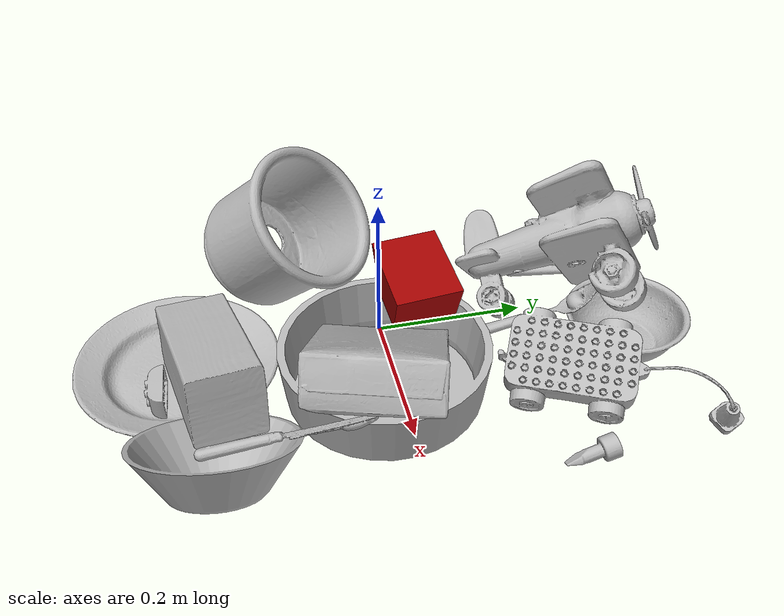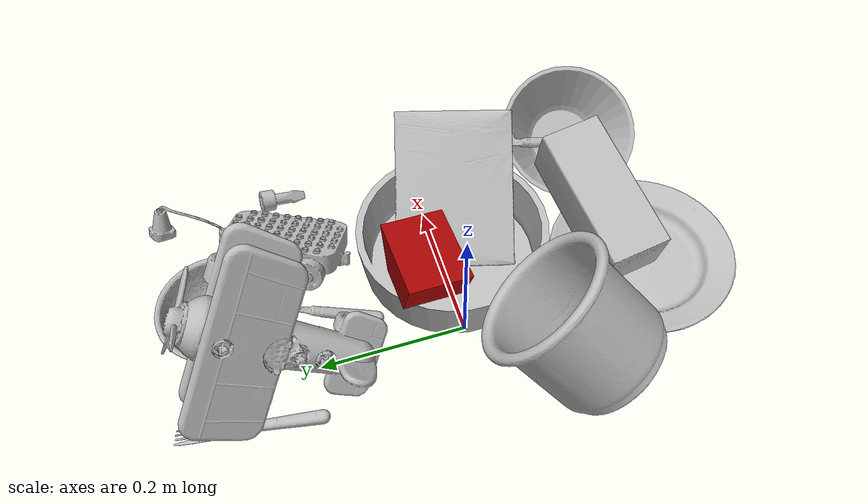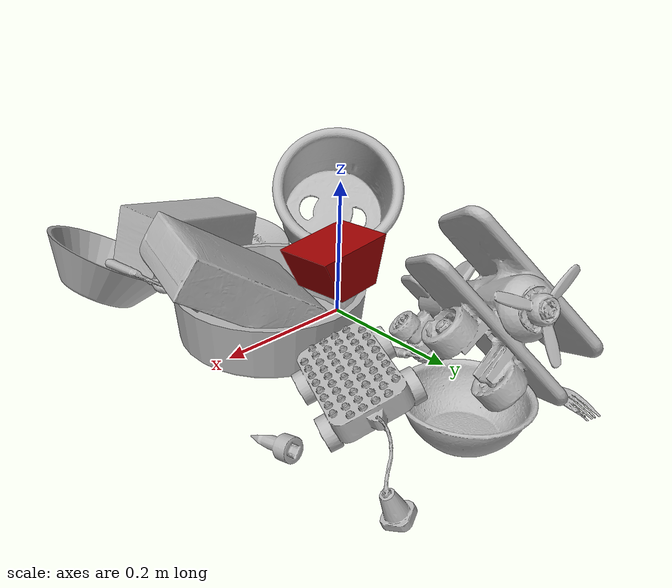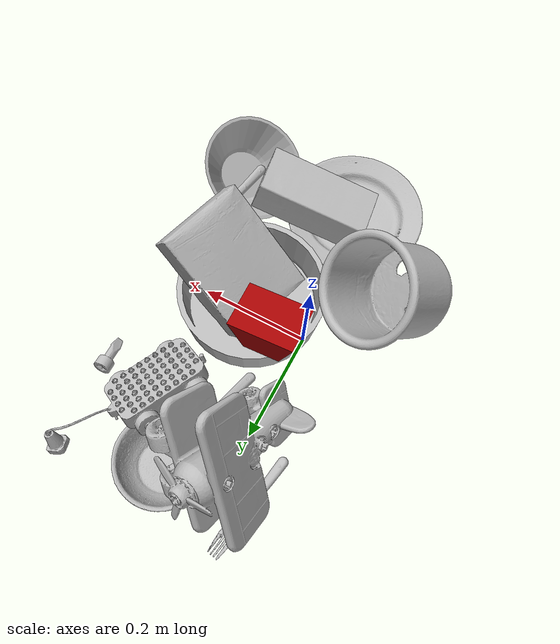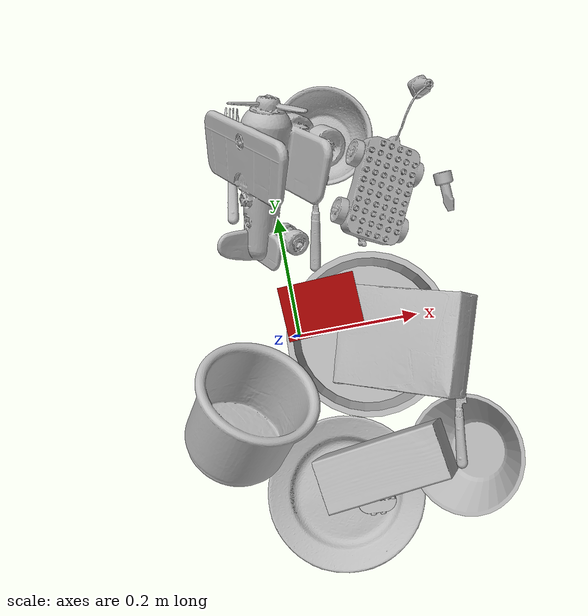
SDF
<sdf version="1.4">
  <world name="default">
    <light name="light1" type="point">
      <pose>0 0 1 0 0 0</pose>
      <diffuse>3 3 3 1</diffuse>
      <specular>3 3 3 1</specular>
    </light>
    <light name="light2" type="point">
      <pose>0 0.5 2 0 0 0</pose>
      <diffuse>1 1 1 1</diffuse>
      <specular>1 1 1 1</specular>
    </light>
    <light name="light3" type="point">
      <pose>0 0.5 2 0 0 0</pose>
      <diffuse>3 3 3 1</diffuse>
      <specular>3 3 3 1</specular>
    </light>
    <scene>
      <ambient>0.7 0.7 0.7</ambient>
    </scene>
    <model name="plate1">
      <link name="link_plate1">
        <collision name="default">
          <geometry>
            <mesh>
              <uri>model://plate/collision_meshes/collision.obj</uri>
              <scale>1.0 1.0 1.0</scale>
            </mesh>
          </geometry>
          <surface>
            <friction>
              <ode>
                <mu>0.5</mu>
                <mu2>0.5</mu2>
              </ode>
            </friction>
          <contact>
        <ode>
            <max_vel>0</max_vel>
            <min_depth>0.0001</min_depth>
            <kp>1e8</kp>
        </ode>
    </contact></surface>
        </collision>
        <visual name="default">
          <geometry>
            <mesh>
              <uri>model://plate/visual_meshes/visual.dae</uri>
              <scale>1.0 1.0 1.0</scale>
            </mesh>
          </geometry>
        </visual>
        <inertial>
          <mass>0.18013060092926025</mass>
          <pose>-0.0006044624606147408 0.0002782579977065325 -0.0010561981471255422 0.0022187543261248163 -0.003225499970721242 0.452618951787785</pose>
          <inertia>
            <ixx>0.00084265455</ixx>
            <iyy>0.000834595</iyy>
            <izz>0.0016481068</izz>
            <ixy>0</ixy>
            <ixz>0</ixz>
            <iyz>0</iyz>
          </inertia>
        </inertial>
      </link>
      <pose>0.02859419398009777 -0.27191463112831116 0.013734474778175354 -2.443052908097033e-05 2.57941634935237e-05 1.0036559654600878</pose>
    </model>
    <model name="plate2">
      <link name="link_plate2">
        <collision name="default">
          <geometry>
            <mesh>
              <uri>model://pan_tefal/collision_meshes/collision.obj</uri>
              <scale>1.0 1.0 1.0</scale>
            </mesh>
          </geometry>
          <surface>
            <friction>
              <ode>
                <mu>0.5</mu>
                <mu2>0.5</mu2>
              </ode>
            </friction>
          <contact>
        <ode>
            <max_vel>0</max_vel>
            <min_depth>0.0001</min_depth>
            <kp>1e8</kp>
        </ode>
    </contact></surface>
        </collision>
        <visual name="default">
          <geometry>
            <mesh>
              <uri>model://pan_tefal/visual_meshes/visual.dae</uri>
              <scale>1.0 1.0 1.0</scale>
            </mesh>
          </geometry>
        </visual>
        <inertial>
          <mass>1.1554980278015137</mass>
          <pose>-0.00018001958960667253 3.279018710600212e-05 -0.008514934219419956 0.0008190268412404128 -0.0003301434555644904 -0.33185316474518306</pose>
          <inertia>
            <ixx>0.007976347</ixx>
            <iyy>0.008027771</iyy>
            <izz>0.014682918</izz>
            <ixy>0</ixy>
            <ixz>0</ixz>
            <iyz>0</iyz>
          </inertia>
        </inertial>
      </link>
      <pose>0.11383827030658722 -0.018209457397460938 0.03805012255907059 -3.912507412050568e-06 -3.865381827991793e-06 2.380841918587004</pose>
    </model>
    <model name="bowl1">
      <link name="link_bowl1">
        <collision name="default">
          <geometry>
            <mesh>
              <uri>model://bowl/collision_meshes/collision.obj</uri>
              <scale>1.0 1.0 1.0</scale>
            </mesh>
          </geometry>
          <surface>
            <friction>
              <ode>
                <mu>0.5</mu>
                <mu2>0.5</mu2>
              </ode>
            </friction>
          <contact>
        <ode>
            <max_vel>0</max_vel>
            <min_depth>0.0001</min_depth>
            <kp>1e8</kp>
        </ode>
    </contact></surface>
        </collision>
        <visual name="default">
          <geometry>
            <mesh>
              <uri>model://bowl/visual_meshes/visual.dae</uri>
              <scale>1.0 1.0 1.0</scale>
            </mesh>
          </geometry>
        </visual>
        <inertial>
          <mass>0.08154366910457611</mass>
          <pose>0.0002044497523456812 -0.0010302083101123571 -0.0008042664267122746 -0.01576409235239578 0.014546819263349199 0.7140418673414882</pose>
          <inertia>
            <ixx>0.00018731231</ixx>
            <iyy>0.000183127</iyy>
            <izz>0.00031512365</izz>
            <ixy>0</ixy>
            <ixz>0</ixz>
            <iyz>0</iyz>
          </inertia>
        </inertial>
      </link>
      <pose>0.09965503960847855 0.31168150901794434 0.027931416407227516 -0.003452016368564988 -7.808494231601315e-05 1.8194474815677222</pose>
    </model>
    <model name="bowl2">
      <link name="link_bowl2">
        <collision name="default">
          <geometry>
            <mesh>
              <uri>model://bowl_a/collision_meshes/collision.obj</uri>
              <scale>1.0 1.0 1.0</scale>
            </mesh>
          </geometry>
          <surface>
            <friction>
              <ode>
                <mu>0.5</mu>
                <mu2>0.5</mu2>
              </ode>
            </friction>
          <contact>
        <ode>
            <max_vel>0</max_vel>
            <min_depth>0.0001</min_depth>
            <kp>1e8</kp>
        </ode>
    </contact></surface>
        </collision>
        <visual name="default">
          <geometry>
            <mesh>
              <uri>model://bowl_a/visual_meshes/visual.dae</uri>
              <scale>1.0 1.0 1.0</scale>
            </mesh>
          </geometry>
        </visual>
        <inertial>
          <mass>0.4363987147808075</mass>
          <pose>0.0002786752884276211 4.73113359475974e-05 -0.0013765294570475817 -0.0009805318297205425 -0.0010938254473046036 -0.19123908587825994</pose>
          <inertia>
            <ixx>0.0012424473</ixx>
            <iyy>0.001250075</iyy>
            <izz>0.0022097398</izz>
            <ixy>0</ixy>
            <ixz>0</ixz>
            <iyz>0</iyz>
          </inertia>
        </inertial>
      </link>
      <pose>0.2423471063375473 -0.23725606501102448 0.05313802883028984 -0.496629321622961 -0.010535828611073765 1.3948062425188026</pose>
    </model>
    <model name="silverware1">
      <link name="link_silverware1">
        <collision name="default">
          <geometry>
            <mesh>
              <uri>model://spoon/collision_meshes/collision.obj</uri>
              <scale>1.0 1.0 1.0</scale>
            </mesh>
          </geometry>
          <surface>
            <friction>
              <ode>
                <mu>0.5</mu>
                <mu2>0.5</mu2>
              </ode>
            </friction>
          <contact>
        <ode>
            <max_vel>0</max_vel>
            <min_depth>0.0001</min_depth>
            <kp>1e8</kp>
        </ode>
    </contact></surface>
        </collision>
        <visual name="default">
          <geometry>
            <mesh>
              <uri>model://spoon/visual_meshes/visual.dae</uri>
              <scale>1.0 1.0 1.0</scale>
            </mesh>
          </geometry>
        </visual>
        <inertial>
          <mass>0.034700214862823486</mass>
          <pose>-0.00552632100880146 -0.0016034168656915426 -0.0007271654903888702 0.03521477925438783 -0.03906582568380071 0.006150611591128785</pose>
          <inertia>
            <ixx>1.9300821e-06</ixx>
            <iyy>0.00013203312</iyy>
            <izz>0.00013298499</izz>
            <ixy>0</ixy>
            <ixz>0</ixz>
            <iyz>0</iyz>
          </inertia>
        </inertial>
      </link>
      <pose>0.06266885250806808 0.191358283162117 0.04208885133266449 -0.12843233833199744 -0.37278977081459674 1.3589091887493796</pose>
    </model>
    <model name="box1">
      <link name="link_box1">
        <collision name="default">
          <geometry>
            <mesh>
              <uri>model://cracker_box/collision_meshes/collision.obj</uri>
              <scale>1.0 1.0 1.0</scale>
            </mesh>
          </geometry>
          <surface>
            <friction>
              <ode>
                <mu>0.5</mu>
                <mu2>0.5</mu2>
              </ode>
            </friction>
          <contact>
        <ode>
            <max_vel>0</max_vel>
            <min_depth>0.0001</min_depth>
            <kp>1e8</kp>
        </ode>
    </contact></surface>
        </collision>
        <visual name="default">
          <geometry>
            <mesh>
              <uri>model://cracker_box/visual_meshes/visual.dae</uri>
              <scale>1.0 1.0 1.0</scale>
            </mesh>
          </geometry>
        </visual>
        <inertial>
          <mass>1.831273078918457</mass>
          <pose>0.000946414191275835 0.00025434247800149024 -0.0017029533628374338 -0.0003162074786093215 -0.01110648680647863 0.0025467950006863548</pose>
          <inertia>
            <ixx>0.0046579414</ixx>
            <iyy>0.0076911766</iyy>
            <izz>0.010976015</izz>
            <ixy>0</ixy>
            <ixz>0</ixz>
            <iyz>0</iyz>
          </inertia>
        </inertial>
      </link>
      <pose>0.16619598865509033 -0.036608871072530746 0.08944997936487198 3.126851835162973 -0.5758576946898694 -0.2841211109167067</pose>
    </model>
    <model name="box2">
      <link name="link_box2">
        <collision name="default">
          <geometry>
            <mesh>
              <uri>model://wood_block/collision_meshes/collision.obj</uri>
              <scale>1.0 1.0 1.0</scale>
            </mesh>
          </geometry>
          <surface>
            <friction>
              <ode>
                <mu>0.5</mu>
                <mu2>0.5</mu2>
              </ode>
            </friction>
          <contact>
        <ode>
            <max_vel>0</max_vel>
            <min_depth>0.0001</min_depth>
            <kp>1e8</kp>
        </ode>
    </contact></surface>
        </collision>
        <visual name="default">
          <geometry>
            <mesh>
              <uri>model://wood_block/visual_meshes/visual.dae</uri>
              <scale>1.0 1.0 1.0</scale>
            </mesh>
          </geometry>
        </visual>
        <inertial>
          <mass>1.0038666725158691</mass>
          <pose>-5.813315510749817e-06 -0.000570809468626976 0.0002640858292579651 -0.05221020962952386 -0.005192696059900718 -0.006861377701075274</pose>
          <inertia>
            <ixx>0.0013433257</ixx>
            <iyy>0.0042435657</iyy>
            <izz>0.0042276927</izz>
            <ixy>0</ixy>
            <ixz>0</ixz>
            <iyz>0</iyz>
          </inertia>
        </inertial>
      </link>
      <pose>0.09952639043331146 -0.2297850400209427 0.07270646095275879 1.6232699316387897 0.23451462893707065 -2.983848299619412</pose>
    </model>
    <model name="cup1">
      <link name="link_cup1">
        <collision name="default">
          <geometry>
            <mesh>
              <uri>model://i_cups/collision_meshes/collision.obj</uri>
              <scale>2.0 2.0 2.0</scale>
            </mesh>
          </geometry>
          <surface>
            <friction>
              <ode>
                <mu>0.5</mu>
                <mu2>0.5</mu2>
              </ode>
            </friction>
          <contact>
        <ode>
            <max_vel>0</max_vel>
            <min_depth>0.0001</min_depth>
            <kp>1e8</kp>
        </ode>
    </contact></surface>
        </collision>
        <visual name="default">
          <geometry>
            <mesh>
              <uri>model://i_cups/visual_meshes/visual.dae</uri>
              <scale>2.0 2.0 2.0</scale>
            </mesh>
          </geometry>
        </visual>
        <inertial>
          <mass>0.6038269996643066</mass>
          <pose>0.00022479970357380807 0.0003359453985467553 -0.001715799910016358 -0.02898255198870416 -0.03987340808103542 -0.3459203892901821</pose>
          <inertia>
            <ixx>0.0033440301</ixx>
            <iyy>0.003373493</iyy>
            <izz>0.0037374943</izz>
            <ixy>0</ixy>
            <ixz>0</ixz>
            <iyz>0</iyz>
          </inertia>
        </inertial>
      </link>
      <pose>-0.1010642871260643 -0.11311289668083191 0.1057877391576767 0.7552990772785775 0.4378148362456957 2.0241141118840122</pose>
    </model>
    <model name="silverware2">
      <link name="link_silverware2">
        <collision name="default">
          <geometry>
            <mesh>
              <uri>model://knife/collision_meshes/collision.obj</uri>
              <scale>1.0 1.0 1.0</scale>
            </mesh>
          </geometry>
          <surface>
            <friction>
              <ode>
                <mu>0.5</mu>
                <mu2>0.5</mu2>
              </ode>
            </friction>
          <contact>
        <ode>
            <max_vel>0</max_vel>
            <min_depth>0.0001</min_depth>
            <kp>1e8</kp>
        </ode>
    </contact></surface>
        </collision>
        <visual name="default">
          <geometry>
            <mesh>
              <uri>model://knife/visual_meshes/visual.dae</uri>
              <scale>1.0 1.0 1.0</scale>
            </mesh>
          </geometry>
        </visual>
        <inertial>
          <mass>0.01351180113852024</mass>
          <pose>-0.023785246536135674 0.0015275131445378065 5.062015407020226e-05 0.073058244240525 0.017248418380522417 -0.007409818685807072</pose>
          <inertia>
            <ixx>3.8351965e-07</ixx>
            <iyy>5.1910156e-05</iyy>
            <izz>5.2033673e-05</izz>
            <ixy>0</ixy>
            <ixz>0</ixz>
            <iyz>0</iyz>
          </inertia>
        </inertial>
      </link>
      <pose>0.23578281700611115 -0.15523532032966614 0.07607348263263702 -0.47179218436174253 -0.20562795414305726 1.4472826742636469</pose>
    </model>
    <model name="silverware3">
      <link name="link_silverware3">
        <collision name="default">
          <geometry>
            <mesh>
              <uri>model://fork/collision_meshes/collision.obj</uri>
              <scale>1.0 1.0 1.0</scale>
            </mesh>
          </geometry>
          <surface>
            <friction>
              <ode>
                <mu>0.5</mu>
                <mu2>0.5</mu2>
              </ode>
            </friction>
          <contact>
        <ode>
            <max_vel>0</max_vel>
            <min_depth>0.0001</min_depth>
            <kp>1e8</kp>
        </ode>
    </contact></surface>
        </collision>
        <visual name="default">
          <geometry>
            <mesh>
              <uri>model://fork/visual_meshes/visual.dae</uri>
              <scale>1.0 1.0 1.0</scale>
            </mesh>
          </geometry>
        </visual>
        <inertial>
          <mass>0.030749449506402016</mass>
          <pose>-0.029570044949650764 0.0004658822435885668 0.00032188615296036005 -0.013551266353778695 -0.010977839115777554 0.014453902178384312</pose>
          <inertia>
            <ixx>1.0779423e-06</ixx>
            <iyy>8.0277954e-05</iyy>
            <izz>8.076011e-05</izz>
            <ixy>0</ixy>
            <ixz>0</ixz>
            <iyz>0</iyz>
          </inertia>
        </inertial>
      </link>
      <pose>-0.058126576244831085 0.3010595440864563 0.007446600589901209 -3.063499621040885 0.002835967102094438 1.4081917203061418</pose>
    </model>
    <model name="toy1">
      <link name="link_toy1">
        <collision name="default">
          <geometry>
            <mesh>
              <uri>model://e_toy_airplane/collision_meshes/collision.obj</uri>
              <scale>1.0 1.0 1.0</scale>
            </mesh>
          </geometry>
          <surface>
            <friction>
              <ode>
                <mu>0.5</mu>
                <mu2>0.5</mu2>
              </ode>
            </friction>
          <contact>
        <ode>
            <max_vel>0</max_vel>
            <min_depth>0.0001</min_depth>
            <kp>1e8</kp>
        </ode>
    </contact></surface>
        </collision>
        <visual name="default">
          <geometry>
            <mesh>
              <uri>model://e_toy_airplane/visual_meshes/visual.dae</uri>
              <scale>1.0 1.0 1.0</scale>
            </mesh>
          </geometry>
        </visual>
        <inertial>
          <mass>0.01770107075572014</mass>
          <pose>0.00011740486661437899 -2.248296732432209e-05 -0.011187206022441387 0.005518513464699853 0.009228302242376646 0.15041570361631973</pose>
          <inertia>
            <ixx>5.4025695e-06</ixx>
            <iyy>5.3473045e-06</iyy>
            <izz>1.6236847e-06</izz>
            <ixy>0</ixy>
            <ixz>0</ixz>
            <iyz>0</iyz>
          </inertia>
        </inertial>
      </link>
      <pose>0.2854205071926117 0.19091033935546875 0.011941591277718544 2.0453184908131523 1.1309611605469951 0.5096492492138528</pose>
    </model>
    <model name="toy2">
      <link name="link_toy2">
        <collision name="default">
          <geometry>
            <mesh>
              <uri>model://a_toy_airplane/collision_meshes/collision.obj</uri>
              <scale>1.0 1.0 1.0</scale>
            </mesh>
          </geometry>
          <surface>
            <friction>
              <ode>
                <mu>0.5</mu>
                <mu2>0.5</mu2>
              </ode>
            </friction>
          <contact>
        <ode>
            <max_vel>0</max_vel>
            <min_depth>0.0001</min_depth>
            <kp>1e8</kp>
        </ode>
    </contact></surface>
        </collision>
        <visual name="default">
          <geometry>
            <mesh>
              <uri>model://a_toy_airplane/visual_meshes/visual.dae</uri>
              <scale>1.0 1.0 1.0</scale>
            </mesh>
          </geometry>
        </visual>
        <inertial>
          <mass>1.6391528844833374</mass>
          <pose>0.02516508661210537 -0.003707319963723421 -0.0011962438002228737 -0.012016999892079352 -0.14663507149587088 0.004149061575203148</pose>
          <inertia>
            <ixx>0.0059525487</ixx>
            <iyy>0.008674072</iyy>
            <izz>0.01015627</izz>
            <ixy>0</ixy>
            <ixz>0</ixz>
            <iyz>0</iyz>
          </inertia>
        </inertial>
      </link>
      <pose>-0.004818614572286606 0.24680009484291077 0.10106070339679718 -0.8873682696913556 -0.3054783898356236 1.1210177353802688</pose>
    </model>
    <model name="toy3">
      <link name="link_toy3">
        <collision name="default">
          <geometry>
            <mesh>
              <uri>model://g_lego_duplo/collision_meshes/collision.obj</uri>
              <scale>1.0 1.0 1.0</scale>
            </mesh>
          </geometry>
          <surface>
            <friction>
              <ode>
                <mu>0.5</mu>
                <mu2>0.5</mu2>
              </ode>
            </friction>
          <contact>
        <ode>
            <max_vel>0</max_vel>
            <min_depth>0.0001</min_depth>
            <kp>1e8</kp>
        </ode>
    </contact></surface>
        </collision>
        <visual name="default">
          <geometry>
            <mesh>
              <uri>model://g_lego_duplo/visual_meshes/visual.dae</uri>
              <scale>1.0 1.0 1.0</scale>
            </mesh>
          </geometry>
        </visual>
        <inertial>
          <mass>0.5092288255691528</mass>
          <pose>-0.05004768446087837 0.0017554641235619783 0.0038806775119155645 0.010963010010498962 0.03810823590924119 -0.09653024292159736</pose>
          <inertia>
            <ixx>0.00073787844</ixx>
            <iyy>0.002230844</iyy>
            <izz>0.002790868</izz>
            <ixy>0</ixy>
            <ixz>0</ixz>
            <iyz>0</iyz>
          </inertia>
        </inertial>
      </link>
      <pose>0.2024364471435547 0.25805726647377014 0.050417523831129074 0.4273037943350299 -2.9044708446998292e-05 1.1160834617794866</pose>
    </model>
    <model name="toy4">
      <link name="link_toy4">
        <collision name="default">
          <geometry>
            <mesh>
              <uri>model://a_lego_duplo/collision_meshes/collision.obj</uri>
              <scale>1.0 1.0 1.0</scale>
            </mesh>
          </geometry>
          <surface>
            <friction>
              <ode>
                <mu>0.5</mu>
                <mu2>0.5</mu2>
              </ode>
            </friction>
          <contact>
        <ode>
            <max_vel>0</max_vel>
            <min_depth>0.0001</min_depth>
            <kp>1e8</kp>
        </ode>
    </contact></surface>
        </collision>
        <visual name="default">
          <geometry>
            <mesh>
              <uri>model://a_lego_duplo/visual_meshes/visual.dae</uri>
              <scale>1.0 1.0 1.0</scale>
            </mesh>
          </geometry>
        </visual>
        <inertial>
          <mass>0.03161923587322235</mass>
          <pose>-0.00011337598698446527 0.00018517524586059153 0.00036926084430888295 -0.014116977368405541 -0.00012565500284871778 6.143069663272407e-05</pose>
          <inertia>
            <ixx>4.0538393e-06</ixx>
            <iyy>9.081488e-06</iyy>
            <izz>1.1249442e-05</izz>
            <ixy>0</ixy>
            <ixz>0</ixz>
            <iyz>0</iyz>
          </inertia>
        </inertial>
      </link>
      <pose>0.0752539336681366 -0.3010958135128021 0.019793406128883362 -1.5870189071375276 -0.018189703431268 3.079194534022444</pose>
    </model>
    <model name="toy5">
      <link name="link_toy5">
        <collision name="default">
          <geometry>
            <mesh>
              <uri>model://prism/collision_meshes/collision.obj</uri>
              <scale>1.0 1.0 1.0</scale>
            </mesh>
          </geometry>
          <surface>
            <friction>
              <ode>
                <mu>0.5</mu>
                <mu2>0.5</mu2>
              </ode>
            </friction>
          <contact>
        <ode>
            <max_vel>0</max_vel>
            <min_depth>0.0001</min_depth>
            <kp>1e8</kp>
        </ode>
    </contact></surface>
        </collision>
        <visual name="default">
          <geometry>
            <mesh>
              <uri>model://prism/visual_meshes/visual.dae</uri>
              <scale>1.0 1.0 1.0</scale>
            </mesh>
          </geometry>
        </visual>
        <inertial>
          <mass>0.5650969743728638</mass>
          <pose>-9.85359656624496e-05 -4.96157269935793e-07 -0.0033869100734591484 0.0 0.006559179369129768 0.0</pose>
          <inertia>
            <ixx>0.00050999306</ixx>
            <iyy>0.00061633316</iyy>
            <izz>0.00075493456</izz>
            <ixy>0</ixy>
            <ixz>0</ixz>
            <iyz>0</iyz>
          </inertia>
        </inertial>
      </link>
      <pose>0.045641716569662094 0.039411962032318115 0.10522773116827011 -3.0828834891313583 0.0737132282409214 0.04548181458907258</pose>
    </model>
  <physics type="ode">
      <max_contacts>50</max_contacts>
      <ode>
        <solver>
          <type>quick</type>
          <iters>75</iters>
        </solver>
        <constraints>
          <contact_max_correcting_vel>0</contact_max_correcting_vel>
          <contact_surface_layer>0</contact_surface_layer>
        </constraints>
      </ode>
    </physics></world>
</sdf>
